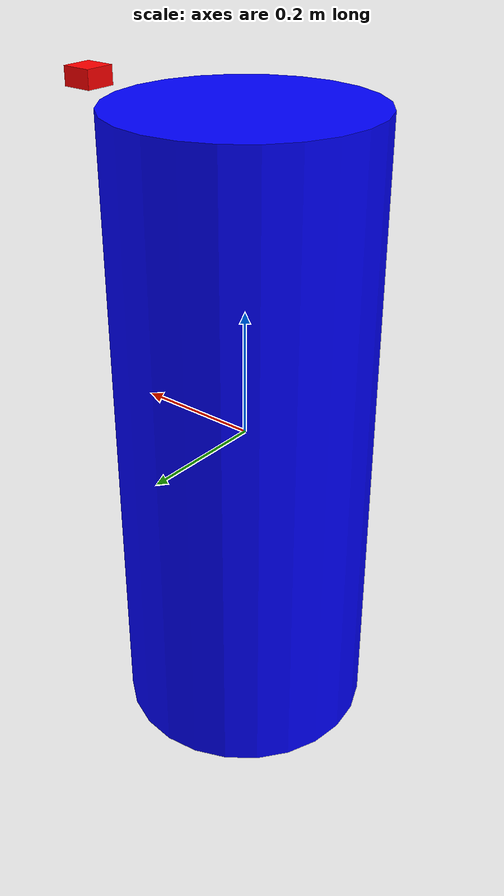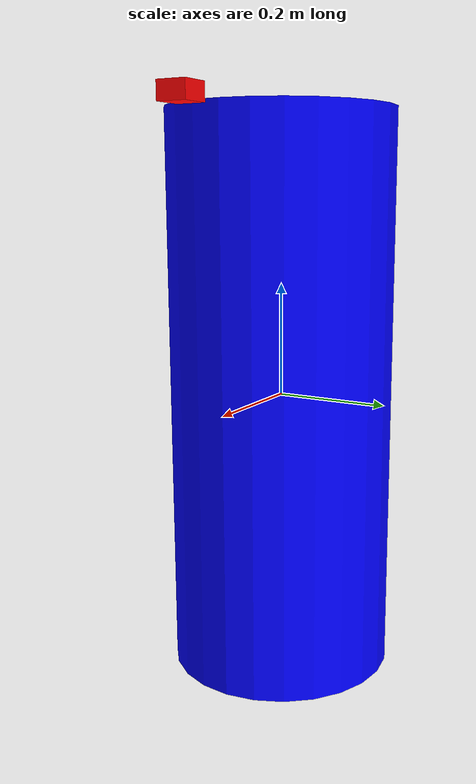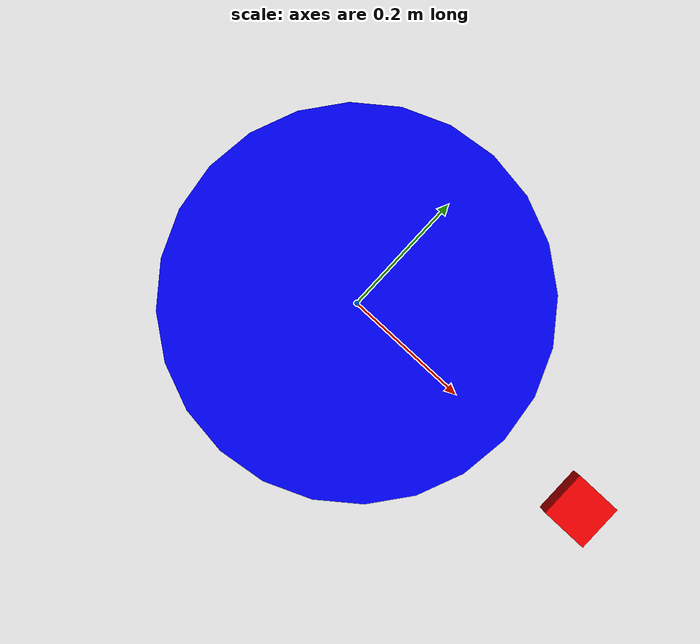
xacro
<?xml version="1.0"?>
<robot xmlns:xacro="http://ros.org/wiki/xacro" name="robot">

  <xacro:include filename="camera.xacro"/>

  <link name="base_link">
    <visual>
      <geometry>
        <cylinder length="1.0" radius="0.2"/>
      </geometry>
      <material name="blue">
        <color rgba="0 0 1 1"/>
      </material>
    </visual>

    <collision>
      <geometry>
        <cylinder length="1.0" radius="0.2"/>
      </geometry>
    </collision>

    <inertial>
      <mass value="150.0"/>
      <origin xyz="0 0 0"/>
      <inertia ixx="1" ixy="0" ixz="0" iyy="1" iyz="0" izz="1"/>
    </inertial>
  </link>

  <xacro:camera>
    <origin xyz="0.3 0 0.5" rpy="0 0 0"/>
  </xacro:camera>

</robot>

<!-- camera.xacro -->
<robot xmlns:xacro="http://ros.org/wiki/xacro">

  <xacro:macro name="camera" params="*origin">
    <link name="camera_link">
      <visual>
        <geometry>
          <box size="0.05 0.05 0.03"/>
        </geometry>
        <material name="red">
          <color rgba="1 0 0 1"/>
        </material>
      </visual>
    </link>

    <joint name="base_camera_joint" type="fixed">
      <parent link="base_link"/>
      <child link="camera_link"/>
      <xacro:insert_block name="origin" />
    </joint>

    <!-- Use ignition sensor without ROS plugin, bridge will handle communication -->
    <gazebo reference="camera_link">
      <sensor type="camera" name="camera_sensor">
        <camera name="camera">
          <horizontal_fov>1.2</horizontal_fov>
          <image>
            <width>640</width>
            <height>480</height>
            <format>R8G8B8</format>
          </image>
          <clip>
            <near>0.1</near>
            <far>100</far>
          </clip>
        </camera>
        <always_on>1</always_on>
        <update_rate>30</update_rate>
        <visualize>true</visualize>
      </sensor>
    </gazebo>

  </xacro:macro>

</robot>
